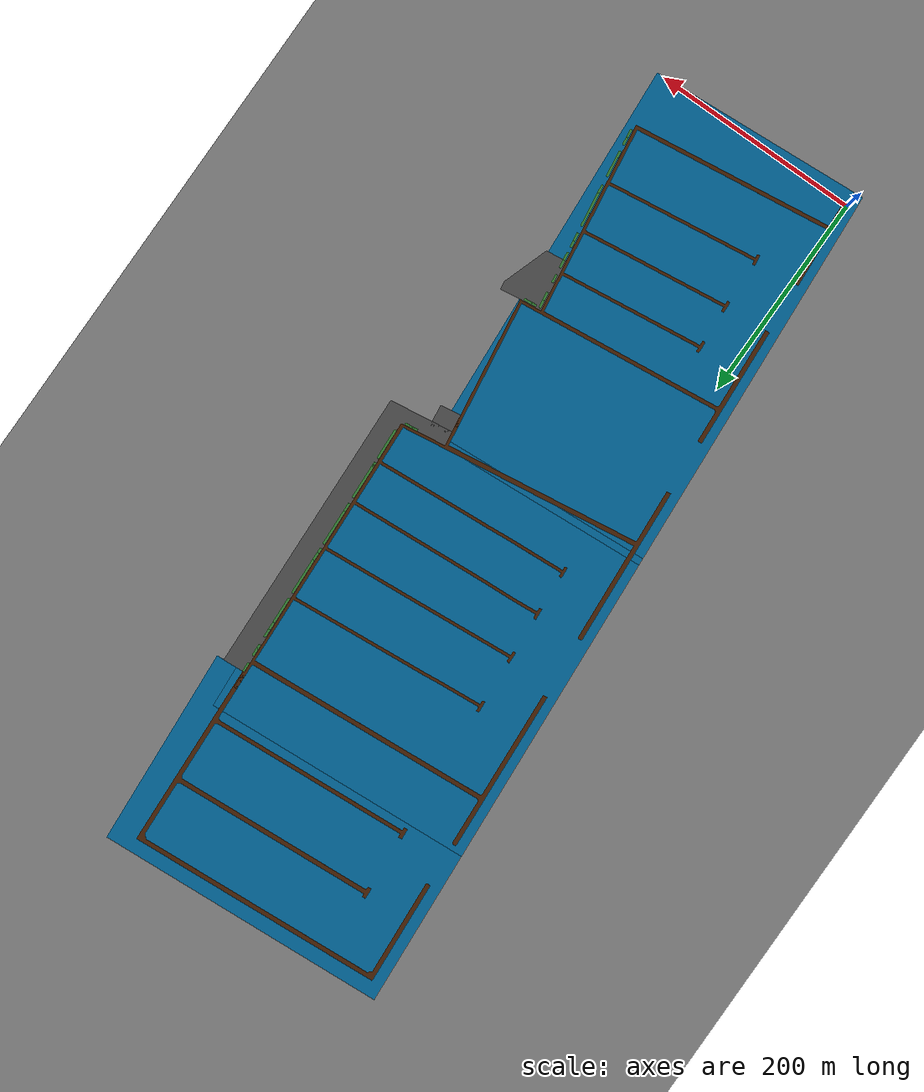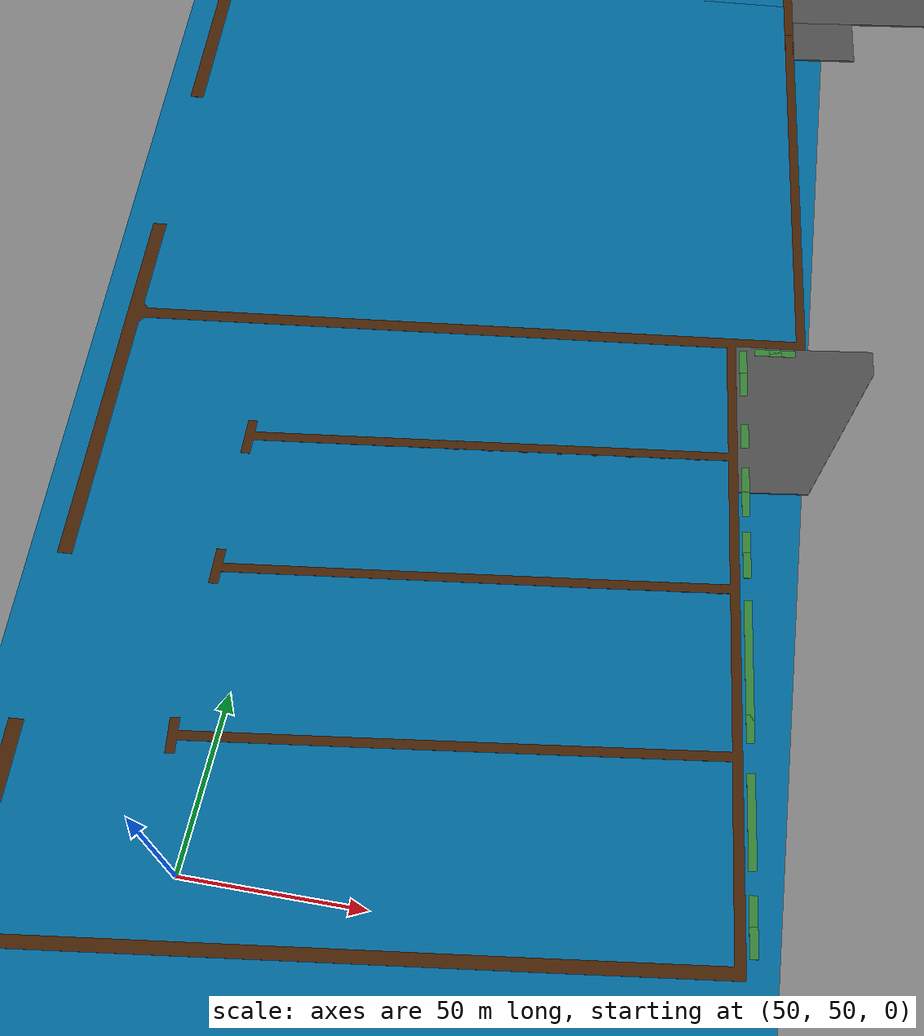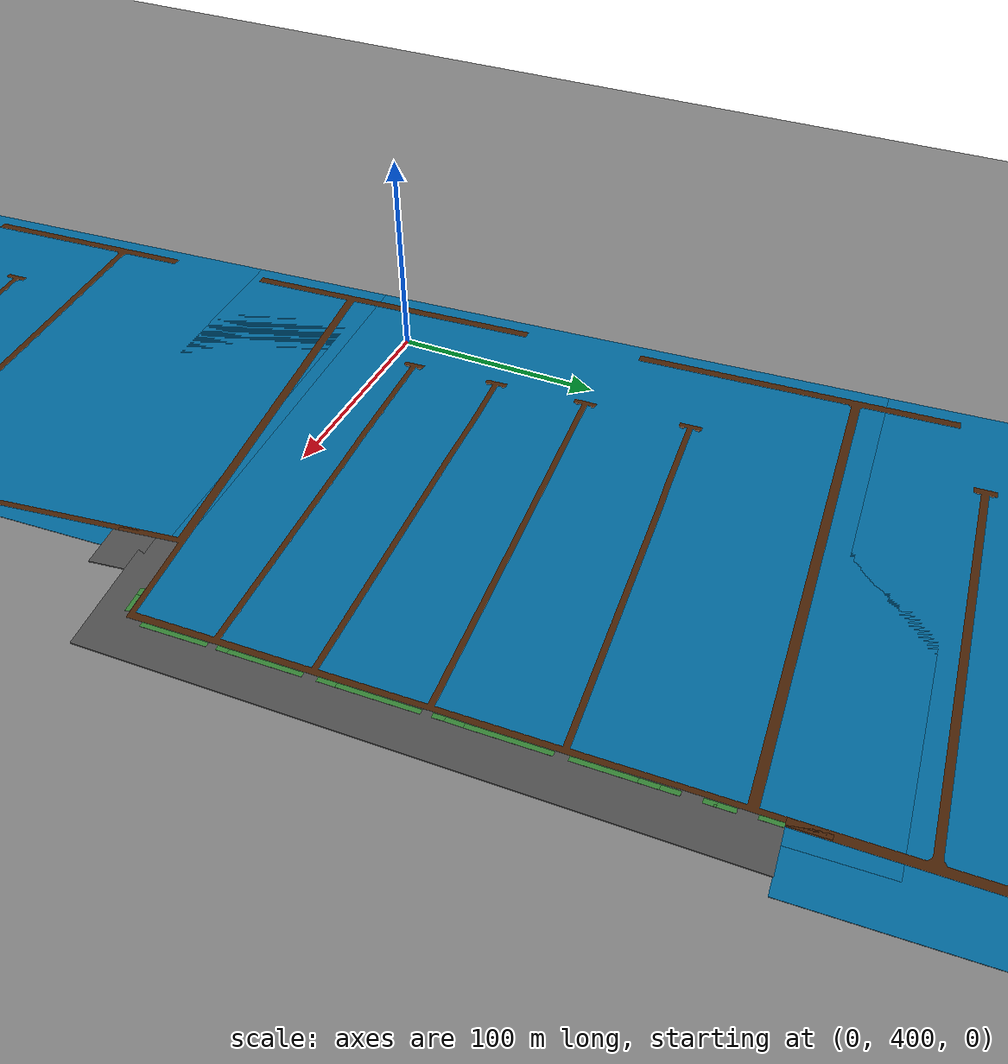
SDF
<sdf version='1.10'>
  <world name='marina_harmonic'>
    <plugin name='gz::sim::systems::Physics' filename='gz-sim-physics-system'/>
    <plugin name='gz::sim::systems::UserCommands' filename='gz-sim-user-commands-system'/>
    <plugin name='gz::sim::systems::SceneBroadcaster' filename='gz-sim-scene-broadcaster-system'/>
    <plugin filename="gz-sim-imu-system" name="gz::sim::systems::Imu"> </plugin>
    <plugin filename="gz-sim-navsat-system" name="gz::sim::systems::NavSat"> </plugin>
    <plugin filename="gz-sim-sensors-system" name="gz::sim::systems::Sensors">
      <render_engine>ogre2</render_engine>
    </plugin>
    <plugin name='gz::sim::systems::Contact' filename='gz-sim-contact-system'/>
    <physics name='1ms' type='ignored'>
      <max_step_size>0.001</max_step_size>
      <real_time_factor>1</real_time_factor>
      <real_time_update_rate>1000</real_time_update_rate>
    </physics>
    <gravity>0 0 -9.8000000000000007</gravity>
    <magnetic_field>5.5644999999999998e-06 2.2875799999999999e-05 -4.2388400000000002e-05</magnetic_field>
    <atmosphere type='adiabatic'/>
    <scene>
      <ambient>0.400000006 0.400000006 0.400000006 1</ambient>
      <background>0.699999988 0.699999988 0.699999988 1</background>
      <shadows>true</shadows>
    </scene>
    <model name='ground_plane'>
      <static>true</static>
      <link name='link'>
        <collision name='collision'>
          <geometry>
            <plane>
              <normal>0 0 1</normal>
              <size>100 100</size>
            </plane>
          </geometry>
          <surface>
            <friction>
              <ode/>
            </friction>
            <bounce/>
            <contact/>
          </surface>
        </collision>
        <visual name='visual'>
          <geometry>
            <plane>
              <normal>0 0 1</normal>
              <size>100 100</size>
            </plane>
          </geometry>
          <material>
            <ambient>0.5 0.5 0.5 1</ambient>
            <diffuse>0.5 0.5 0.5 1</diffuse>
            <specular>0.5 0.5 0.5 1</specular>
          </material>
        </visual>
        <pose>0 0 0 0 0 0</pose>
        <inertial>
          <pose>0 0 0 0 0 0</pose>
          <mass>1</mass>
          <inertia>
            <ixx>1</ixx>
            <ixy>0</ixy>
            <ixz>0</ixz>
            <iyy>1</iyy>
            <iyz>0</iyz>
            <izz>1</izz>
          </inertia>
        </inertial>
        <enable_wind>false</enable_wind>
      </link>
      <pose>0 0 0 0 0 0</pose>
      <self_collide>false</self_collide>
    </model>
    <include>
      <uri>file:///home/albert/marinero_ws/src/marinero_simulations/models/world_zona_A_environment</uri>
      <name>world_zona_A_environment</name>
      <pose>96.709999999999994 55.0214 0 0 0 0.068000000000000005</pose>
    </include>
    <include>
      <uri>file:///home/albert/marinero_ws/src/marinero_simulations/models/world_zona_B_environment</uri>
      <name>world_zona_B_environment</name>
      <pose>96.631799999999998 54.757800000000003 0 0 0 0.067599999999999993</pose>
    </include>
    <include>
      <uri>file:///home/albert/marinero_ws/src/marinero_simulations/models/world_zona_C_environment</uri>
      <name>world_zona_C_environment</name>
      <pose>97.163650000000004 54.757399999999997 0 0 0 0.068500000000000005</pose>
    </include>
    <light name='sun' type='directional'>
      <pose>0 0 10 0 0 0</pose>
      <cast_shadows>true</cast_shadows>
      <intensity>1</intensity>
      <direction>-0.5 0.10000000000000001 -0.90000000000000002</direction>
      <diffuse>0.800000012 0.800000012 0.800000012 1</diffuse>
      <specular>0.200000003 0.200000003 0.200000003 1</specular>
      <attenuation>
        <range>1000</range>
        <linear>0.01</linear>
        <constant>0.90000000000000002</constant>
        <quadratic>0.001</quadratic>
      </attenuation>
      <spot>
        <inner_angle>0</inner_angle>
        <outer_angle>0</outer_angle>
        <falloff>0</falloff>
      </spot>
    </light>
    <light name='directionallight' type='directional'>
      <pose>77.237907936943543 680.84047568765823 2 0 0 0</pose>
      <cast_shadows>true</cast_shadows>
      <intensity>1</intensity>
      <direction>0 0 -1</direction>
      <diffuse>0.800000012 0.800000012 0.800000012 1</diffuse>
      <specular>0.200000003 0.200000003 0.200000003 1</specular>
      <attenuation>
        <range>1000</range>
        <linear>0.01</linear>
        <constant>0.90000000000000002</constant>
        <quadratic>0.001</quadratic>
      </attenuation>
      <spot>
        <inner_angle>0</inner_angle>
        <outer_angle>0</outer_angle>
        <falloff>0</falloff>
      </spot>
    </light>
  </world>
</sdf>

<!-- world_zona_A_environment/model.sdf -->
<sdf version='1.7'>
  <model name="world_zona_A_environment">
    <static>true</static>
    <pose>0 0 0 0 0 0</pose>

    <include>
      <uri>/marinero_simulations/models/Marina_Zona_A</uri>
      <pose>-100.225000 -48.323200 0.08 0 0 0</pose>
    </include>

    <include>
      <uri>/marinero_simulations/models/sea_plane_A</uri>
      <pose>-1.12 126.455 0 0 0 0</pose>
    </include>

    <include>
      <uri>/marinero_simulations/models/asphalt_plane</uri>
      <name>asphalt_plane_0</name>
      <pose>105.656586 22.996641 0.0 0 0 -1.498</pose>
    </include>

    <include>
      <uri>/marinero_simulations/models/asphalt_plane</uri>
      <name>asphalt_plane_1</name>
      <pose>100.593285 92.427048 0.0 0 0 -1.498</pose>
    </include>

    <include>
      <uri>/marinero_simulations/models/asphalt_plane_angle_section</uri>
      <pose>96.411346 149.332382 0.0 0 0 0</pose>
    </include>

    <include>
      <uri>/marinero_simulations/models/asphalt_plane</uri>
      <name>asphalt_plane_2</name>
      <pose>113.067787 209.915146 0.0 0 0 -1.500000</pose>
    </include>

    <include>
      <uri>/marinero_simulations/models/asphalt_plane</uri>
      <name>asphalt_plane_3</name>
      <pose>108.119179 279.695282 0 0 0 -1.500000</pose>
    </include>

    <include>
      <uri>/marinero_simulations/models/grass_plane_SM</uri>
      <name>grass_0</name>
      <pose>99.5246 -3.165798 0 0 0 0.0925</pose>
    </include>

    <include>
      <uri>/marinero_simulations/models/grass_plane_SM</uri>
      <name>grass_1</name>
      <pose>98.95 4.711878 0 0 0 0.0925</pose>
    </include>

    <include>
      <uri>/marinero_simulations/models/grass_plane_M</uri>
      <name>grass_2</name>
      <pose>97.35 27.6528 0 0 0 0.0925</pose>
    </include>

    <include>
      <uri>/marinero_simulations/models/grass_plane_SM</uri>
      <name>grass_3</name>
      <pose>95.6044 52.7577 0 0 0 0.0925</pose>
    </include>

    <include>
      <uri>/marinero_simulations/models/grass_plane</uri>
      <name>grass_4</name>
      <pose>94.16 72.5637 0 0 0 0.0925</pose>
    </include>

    <include>
      <uri>/marinero_simulations/models/grass_plane_SM</uri>
      <name>grass_5</name>
      <pose>92.0607 100.811 0 0 0 0.0925</pose>
    </include>

    <include>
      <uri>/marinero_simulations/models/grass_plane_SM</uri>
      <name>grass_6</name>
      <pose>91.6 107.127 0 0 0 0.0925</pose>
    </include>

    <include>
      <uri>/marinero_simulations/models/grass_plane_SM</uri>
      <name>grass_7</name>
      <pose>90.676 120.106 0 0 0 0.0925</pose>
    </include>

    <include>
      <uri>/marinero_simulations/models/grass_plane_SM</uri>
      <name>grass_8</name>
      <pose>90.1 128.004425 0 0 0 0.0925</pose>
    </include>

    <include>
      <uri>/marinero_simulations/models/grass_plane_SM</uri>
      <name>grass_9</name>
      <pose>89.10 142.509000 0 0 0 0.0925</pose>
    </include>

    <include>
      <uri>/marinero_simulations/models/grass_plane_SM</uri>
      <name>grass_10</name>
      <pose>87.75 160.180000 0 0 0 0.0925</pose>
    </include>

    <include>
      <uri>/marinero_simulations/models/grass_plane_SM</uri>
      <name>grass_11</name>
      <pose>87.17 168.135000 0 0 0 0.0925</pose>
    </include>

    <include>
      <uri>/marinero_simulations/models/grass_plane_SM</uri>
      <name>grass_12</name>
      <pose>98.691666 172.331558 0 0 0 -1.510000</pose>
    </include>

    <include>
      <uri>/marinero_simulations/models/grass_plane_SM</uri>
      <name>grass_13</name>
      <pose>94.449425 172.158798 0 0 0 -1.510000</pose>
    </include>

  </model>
</sdf>

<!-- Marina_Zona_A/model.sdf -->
<sdf version='1.7'>
  <model name='Marina_Zona_A'>
    <link name='link'>
      <self_collide>0</self_collide>
      <gravity>1</gravity>
      <inertial>
        <mass>100000</mass>
        <pose>0 0 0 0 0 0</pose>
        <inertia>
          <ixx>1</ixx>
          <ixy>0</ixy>
          <ixz>0</ixz>
          <iyy>1</iyy>
          <iyz>0</iyz>
          <izz>1</izz>
        </inertia>
      </inertial>
      <enable_wind>0</enable_wind>
      <kinematic>0</kinematic>
      <pose>0 0 0 0 0 0</pose>
      <visual name='visual'>
        <pose>0 0 0 0 0 0</pose>
        <geometry>
          <mesh>
            <uri>model://Marina_Zona_A/meshes/Marina_Zona_A.stl</uri>
            <scale>1 1 1</scale>
          </mesh>
        </geometry>
        <material>
          <ambient>0.278 0.129 0.02 1</ambient>
          <diffuse>0.278 0.129 0.02 1</diffuse>
          <specular>0.278 0.129 0.02 1</specular>
          <emissive>0 0 0 1</emissive>
          <shader type='pixel'>
            <normal_map>__default__</normal_map>
          </shader>
        </material>
        <transparency>0</transparency>
        <cast_shadows>1</cast_shadows>
      </visual>
      <collision name='collision'>
        <laser_retro>0</laser_retro>
        <max_contacts>10</max_contacts>
        <pose>0 0 0 0 0 0</pose>
        <geometry>
          <mesh>
            <uri>model://Marina_Zona_A/meshes/Marina_Zona_A.stl</uri>
            <scale>1 1 1</scale>
          </mesh>
        </geometry>
        <surface>
          <friction>
            <ode>
              <mu>1.0</mu>
              <mu2>1.0</mu2>
              <fdir1>0 0 0</fdir1>
              <slip1>0.001</slip1>
              <slip2>1e-05</slip2>
            </ode>
            <torsional>
              <coefficient>1</coefficient>
              <patch_radius>0</patch_radius>
              <surface_radius>0</surface_radius>
              <use_patch_radius>1</use_patch_radius>
              <ode>
                <slip>0</slip>
              </ode>
            </torsional>
          </friction>
          <bounce>
            <restitution_coefficient>0</restitution_coefficient>
            <threshold>1000</threshold>
          </bounce>
          <contact>
            <collide_without_contact>0</collide_without_contact>
            <collide_without_contact_bitmask>0</collide_without_contact_bitmask>
            <collide_bitmask>1</collide_bitmask>
            <ode>
              <soft_cfm>0</soft_cfm>
              <soft_erp>0.2</soft_erp>
              <kp>1e+13</kp>
              <kd>10</kd>
              <max_vel>0.01</max_vel>
              <min_depth>0.001</min_depth>
            </ode>
            <bullet>
              <split_impulse>1</split_impulse>
              <split_impulse_penetration_threshold>-0.01</split_impulse_penetration_threshold>
              <soft_cfm>0</soft_cfm>
              <soft_erp>0.2</soft_erp>
              <kp>1e+11</kp>
              <kd>100</kd>
            </bullet>
          </contact>
        </surface>
      </collision>
    </link>
    <static>1</static>
    <allow_auto_disable>1</allow_auto_disable>
  </model>
</sdf>

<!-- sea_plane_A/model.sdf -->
<sdf version='1.7'>
  <model name='sea_plane_A'>
    <link name='link'>
      <self_collide>0</self_collide>
      <enable_wind>0</enable_wind>
      <kinematic>0</kinematic>
      <pose>0 0 0 0 0 0</pose>
      <gravity>1</gravity>
      <inertial>
        <mass>5.27875e+06</mass>
        <pose>0 0 0 0 0 0</pose>
      </inertial>
      <visual name='visual'>
        <cast_shadows>0</cast_shadows>
        <geometry>
          <box>
            <size>215 378 0.25</size>
          </box>
        </geometry>
        <material>
          <ambient>0.0 0.4 0.6 1.0</ambient>
          <diffuse>0.0 0.4 0.6 1.0</diffuse>
          <specular>0.2 0.2 0.2 1.0</specular>
          <pbr>
            <metal>
              <albedo_map>model://sea_plane/materials/textures/sea_plane.jpg</albedo_map>
            </metal>
          </pbr>
        </material>
        <pose>0 0 0 0 -0 0</pose>
        <transparency>0</transparency>
      </visual>
      <collision name='collision'>
        <laser_retro>0</laser_retro>
        <max_contacts>10</max_contacts>
        <pose>0 0 0 0 -0 0</pose>
        <geometry>
          <box>
            <size>215 378 0.25</size>
          </box>
        </geometry>
        <surface>
          <friction>
            <ode>
              <mu>1</mu>
              <mu2>1</mu2>
              <fdir1>0 0 0</fdir1>
              <slip1>0</slip1>
              <slip2>0</slip2>
            </ode>
            <torsional>
              <coefficient>1</coefficient>
              <patch_radius>0</patch_radius>
              <surface_radius>0</surface_radius>
              <use_patch_radius>1</use_patch_radius>
              <ode>
                <slip>0</slip>
              </ode>
            </torsional>
          </friction>
          <bounce>
            <restitution_coefficient>0</restitution_coefficient>
            <threshold>1e+06</threshold>
          </bounce>
          <contact>
            <collide_without_contact>0</collide_without_contact>
            <collide_without_contact_bitmask>1</collide_without_contact_bitmask>
            <collide_bitmask>1</collide_bitmask>
            <ode>
              <soft_cfm>0</soft_cfm>
              <soft_erp>0.2</soft_erp>
              <kp>1e+13</kp>
              <kd>1</kd>
              <max_vel>0.01</max_vel>
              <min_depth>0</min_depth>
            </ode>
            <bullet>
              <split_impulse>1</split_impulse>
              <split_impulse_penetration_threshold>-0.01</split_impulse_penetration_threshold>
              <soft_cfm>0</soft_cfm>
              <soft_erp>0.2</soft_erp>
              <kp>1e+13</kp>
              <kd>1</kd>
            </bullet>
          </contact>
        </surface>
      </collision>
    </link>
    <static>1</static>
    <allow_auto_disable>1</allow_auto_disable>
  </model>
</sdf>

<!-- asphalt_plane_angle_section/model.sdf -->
<sdf version='1.7'>
  <model name='asphalt_plane_angle_section'>
    <link name='link'>
      <self_collide>0</self_collide>
      <gravity>1</gravity>
      <inertial>
        <mass>1</mass>
        <pose>0 0 0 0 0 0</pose>
        <inertia>
          <ixx>1</ixx>
          <ixy>0</ixy>
          <ixz>0</ixz>
          <iyy>1</iyy>
          <iyz>0</iyz>
          <izz>1</izz>
        </inertia>
      </inertial>
      <enable_wind>0</enable_wind>
      <kinematic>0</kinematic>
      <pose>0 0 1.015 0 0 -1.4967</pose>
      <visual name='visual'>
        <pose>0 0 0 0 0 0</pose>
        <geometry>
          <mesh>
            <uri>model://asphalt_plane_angle_section/meshes/asphalt_plane_angle_section.dae</uri>
            <scale>1 1 5</scale>
          </mesh>
        </geometry>
        <material>
          <ambient>0.3 0.3 0.3 1.0</ambient>
          <diffuse>0.3 0.3 0.3 1.0</diffuse>
          <specular>0.1 0.1 0.1 1.0</specular>
        </material>
        <transparency>0</transparency>
        <cast_shadows>1</cast_shadows>
      </visual>
      <collision name='collision'>
        <laser_retro>0</laser_retro>
        <max_contacts>10</max_contacts>
        <pose>0 0 0 0 0 0</pose>
        <geometry>
          <mesh>
            <uri>model://asphalt_plane_angle_section/meshes/asphalt_plane_angle_section.dae</uri>
            <scale>1 1 5</scale>
          </mesh>
        </geometry>
        <surface>
          <friction>
            <ode>
              <mu>1</mu>
              <mu2>1</mu2>
              <fdir1>0 0 0</fdir1>
              <slip1>0.001</slip1>
              <slip2>1e-05</slip2>
            </ode>
            <torsional>
              <coefficient>1</coefficient>
              <patch_radius>0</patch_radius>
              <surface_radius>0</surface_radius>
              <use_patch_radius>1</use_patch_radius>
              <ode>
                <slip>0</slip>
              </ode>
            </torsional>
          </friction>
          <bounce>
            <restitution_coefficient>0</restitution_coefficient>
            <threshold>1e+06</threshold>
          </bounce>
          <contact>
            <collide_without_contact>0</collide_without_contact>
            <collide_without_contact_bitmask>1</collide_without_contact_bitmask>
            <collide_bitmask>1</collide_bitmask>
            <ode>
              <soft_cfm>0</soft_cfm>
              <soft_erp>0.2</soft_erp>
              <kp>1e+13</kp>
              <kd>1</kd>
              <max_vel>0.01</max_vel>
              <min_depth>0</min_depth>
            </ode>
            <bullet>
              <split_impulse>1</split_impulse>
              <split_impulse_penetration_threshold>-0.01</split_impulse_penetration_threshold>
              <soft_cfm>0</soft_cfm>
              <soft_erp>0.2</soft_erp>
              <kp>1e+13</kp>
              <kd>1</kd>
            </bullet>
          </contact>
        </surface>
      </collision>
    </link>
    <static>1</static>
    <allow_auto_disable>1</allow_auto_disable>
  </model>
</sdf>

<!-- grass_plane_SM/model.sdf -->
<sdf version='1.7'>
  <model name='grass_plane_SM'>
    <link name='link'>
      <self_collide>0</self_collide>
      <enable_wind>0</enable_wind>
      <kinematic>0</kinematic>
      <pose>0 0 1.255 0 0 -1.5905</pose>
      <gravity>1</gravity>
      <inertial>
        <mass>1</mass>
        <pose>0 0 0 0 0 0</pose>
        <inertia>
          <ixx>1</ixx>
          <ixy>0</ixy>
          <ixz>0</ixz>
          <iyy>1</iyy>
          <iyz>0</iyz>
          <izz>1</izz>
        </inertia>
      </inertial>
      <visual name='visual'>
        <cast_shadows>0</cast_shadows>
        <geometry>
          <box>
            <size>8 2.25 0.1</size>
          </box>
        </geometry>
        <material>
          <ambient>0.2 0.5 0.2 1</ambient>
          <diffuse>0.2 0.5 0.2 1</diffuse>
          <specular>0.2 0.2 0.2 1</specular>
          <pbr>
            <metal>
              <albedo_map>model://grass_plane/materials/textures/grass.jpg</albedo_map>
            </metal>
          </pbr>
        </material>
        <pose>0 0 0 0 0 0</pose>
        <transparency>0</transparency>
      </visual>
      <collision name='collision'>
        <laser_retro>0</laser_retro>
        <max_contacts>10</max_contacts>
        <pose>0 0 0 0 0 0</pose>
        <geometry>
          <box>
            <size>8 2.25 0.1</size>
          </box>
        </geometry>
        <surface>
          <friction>
            <ode>
              <mu>1</mu>
              <mu2>1</mu2>
              <fdir1>0 0 0</fdir1>
              <slip1>0.001</slip1>
              <slip2>1e-05</slip2>
            </ode>
            <torsional>
              <coefficient>1</coefficient>
              <patch_radius>0</patch_radius>
              <surface_radius>0</surface_radius>
              <use_patch_radius>1</use_patch_radius>
              <ode>
                <slip>0</slip>
              </ode>
            </torsional>
          </friction>
          <bounce>
            <restitution_coefficient>0</restitution_coefficient>
            <threshold>1e+06</threshold>
          </bounce>
          <contact>
            <collide_without_contact>0</collide_without_contact>
            <collide_without_contact_bitmask>1</collide_without_contact_bitmask>
            <collide_bitmask>1</collide_bitmask>
            <ode>
              <soft_cfm>0</soft_cfm>
              <soft_erp>0.2</soft_erp>
              <kp>1e+13</kp>
              <kd>1</kd>
              <max_vel>0.01</max_vel>
              <min_depth>0</min_depth>
            </ode>
            <bullet>
              <split_impulse>1</split_impulse>
              <split_impulse_penetration_threshold>-0.01</split_impulse_penetration_threshold>
              <soft_cfm>0</soft_cfm>
              <soft_erp>0.2</soft_erp>
              <kp>1e+13</kp>
              <kd>1</kd>
            </bullet>
          </contact>
        </surface>
      </collision>
    </link>
    <static>1</static>
    <allow_auto_disable>1</allow_auto_disable>
  </model>
</sdf>

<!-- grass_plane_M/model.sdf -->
<sdf version='1.7'>
  <model name='grass_plane_M'>
    <link name='link'>
      <self_collide>0</self_collide>
      <enable_wind>0</enable_wind>
      <kinematic>0</kinematic>
      <pose>0 0 1.255 0 0 -1.5905</pose>
      <gravity>1</gravity>
      <inertial>
        <mass>1</mass>
        <pose>0 0 0 0 0 0</pose>
        <inertia>
          <ixx>1</ixx>
          <ixy>0</ixy>
          <ixz>0</ixz>
          <iyy>1</iyy>
          <iyz>0</iyz>
          <izz>1</izz>
        </inertia>
      </inertial>
      <visual name='visual'>
        <cast_shadows>0</cast_shadows>
        <geometry>
          <box>
            <size>25.75 2.25 0.1</size>
          </box>
        </geometry>
        <material>
          <ambient>0.2 0.5 0.2 1</ambient>
          <diffuse>0.2 0.5 0.2 1</diffuse>
          <specular>0.2 0.2 0.2 1</specular>
          <pbr>
            <metal>
              <albedo_map>model://grass_plane/materials/textures/grass.jpg</albedo_map>
            </metal>
          </pbr>
        </material>
        <pose>0 0 0 0 0 0</pose>
        <transparency>0</transparency>
      </visual>
      <collision name='collision'>
        <laser_retro>0</laser_retro>
        <max_contacts>10</max_contacts>
        <pose>0 0 0 0 0 0</pose>
        <geometry>
          <box>
            <size>25.75 2.25 0.1</size>
          </box>
        </geometry>
        <surface>
          <friction>
            <ode>
              <mu>1</mu>
              <mu2>1</mu2>
              <fdir1>0 0 0</fdir1>
              <slip1>0.001</slip1>
              <slip2>1e-05</slip2>
            </ode>
            <torsional>
              <coefficient>1</coefficient>
              <patch_radius>0</patch_radius>
              <surface_radius>0</surface_radius>
              <use_patch_radius>1</use_patch_radius>
              <ode>
                <slip>0</slip>
              </ode>
            </torsional>
          </friction>
          <bounce>
            <restitution_coefficient>0</restitution_coefficient>
            <threshold>1e+06</threshold>
          </bounce>
          <contact>
            <collide_without_contact>0</collide_without_contact>
            <collide_without_contact_bitmask>1</collide_without_contact_bitmask>
            <collide_bitmask>1</collide_bitmask>
            <ode>
              <soft_cfm>0</soft_cfm>
              <soft_erp>0.2</soft_erp>
              <kp>1e+13</kp>
              <kd>1</kd>
              <max_vel>0.01</max_vel>
              <min_depth>0</min_depth>
            </ode>
            <bullet>
              <split_impulse>1</split_impulse>
              <split_impulse_penetration_threshold>-0.01</split_impulse_penetration_threshold>
              <soft_cfm>0</soft_cfm>
              <soft_erp>0.2</soft_erp>
              <kp>1e+13</kp>
              <kd>1</kd>
            </bullet>
          </contact>
        </surface>
      </collision>
    </link>
    <static>1</static>
    <allow_auto_disable>1</allow_auto_disable>
  </model>
</sdf>

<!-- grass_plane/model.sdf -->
<sdf version='1.7'>
  <model name='grass_plane'>
    <link name='link'>
      <self_collide>0</self_collide>
      <enable_wind>0</enable_wind>
      <kinematic>0</kinematic>
      <pose>0 0 1.255 0 0 -1.5905</pose>
      <gravity>1</gravity>
      <inertial>
        <mass>1</mass>
        <pose>0 0 0 0 0 0</pose>
        <inertia>
          <ixx>1</ixx>
          <ixy>0</ixy>
          <ixz>0</ixz>
          <iyy>1</iyy>
          <iyz>0</iyz>
          <izz>1</izz>
        </inertia>
      </inertial>
      <visual name='visual'>
        <cast_shadows>0</cast_shadows>
        <geometry>
          <box>
            <size>35 2.25 0.1</size>
          </box>
        </geometry>
        <material>
          <ambient>0.2 0.5 0.2 1</ambient>
          <diffuse>0.2 0.5 0.2 1</diffuse>
          <specular>0.2 0.2 0.2 1</specular>
          <pbr>
            <metal>
              <albedo_map>model://grass_plane/materials/textures/grass.jpg</albedo_map>
            </metal>
          </pbr>
        </material>
        <pose>0 0 0 0 0 0</pose>
        <transparency>0</transparency>
      </visual>
      <collision name='collision'>
        <laser_retro>0</laser_retro>
        <max_contacts>10</max_contacts>
        <pose>0 0 0 0 0 0</pose>
        <geometry>
          <box>
            <size>35 2.25 0.1</size>
          </box>
        </geometry>
        <surface>
          <friction>
            <ode>
              <mu>1</mu>
              <mu2>1</mu2>
              <fdir1>0 0 0</fdir1>
              <slip1>0.001</slip1>
              <slip2>1e-05</slip2>
            </ode>
            <torsional>
              <coefficient>1</coefficient>
              <patch_radius>0</patch_radius>
              <surface_radius>0</surface_radius>
              <use_patch_radius>1</use_patch_radius>
              <ode>
                <slip>0</slip>
              </ode>
            </torsional>
          </friction>
          <bounce>
            <restitution_coefficient>0</restitution_coefficient>
            <threshold>1e+06</threshold>
          </bounce>
          <contact>
            <collide_without_contact>0</collide_without_contact>
            <collide_without_contact_bitmask>1</collide_without_contact_bitmask>
            <collide_bitmask>1</collide_bitmask>
            <ode>
              <soft_cfm>0</soft_cfm>
              <soft_erp>0.2</soft_erp>
              <kp>1e+13</kp>
              <kd>1</kd>
              <max_vel>0.01</max_vel>
              <min_depth>0</min_depth>
            </ode>
            <bullet>
              <split_impulse>1</split_impulse>
              <split_impulse_penetration_threshold>-0.01</split_impulse_penetration_threshold>
              <soft_cfm>0</soft_cfm>
              <soft_erp>0.2</soft_erp>
              <kp>1e+13</kp>
              <kd>1</kd>
            </bullet>
          </contact>
        </surface>
      </collision>
    </link>
    <static>1</static>
    <allow_auto_disable>1</allow_auto_disable>
  </model>
</sdf>

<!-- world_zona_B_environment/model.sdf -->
<sdf version='1.7'>
  <model name='world_zona_B_environment'>
    <static>true</static>
    <pose>0 0 0 0 0 0</pose>

    <include>
      <uri>/marinero_simulations/models/Marina_Zona_B</uri>
      <pose>94.318800 292.840000 0.08 0 0 0</pose>
    </include>

    <include>
      <uri>/marinero_simulations/models/sea_plane_B1</uri>
      <pose>21.285 475.0 0 0 0 0.0004</pose>
    </include>

    <include>
      <uri>/marinero_simulations/models/sea_plane_B2</uri>
      <pose>-6.139 285.0 0 0 0 0.0004</pose>
    </include>

    <include>
      <uri>/marinero_simulations/models/asphalt_plane_zone_B</uri>
      <pose>96.130478 307.399536 0 0 0 0</pose>
    </include>

    <include>
      <uri>/marinero_simulations/models/asphalt_plane_XS</uri>
      <pose>106.578583 301.612610 0 0 0 0</pose>
    </include>

    <include>
      <uri>/marinero_simulations/models/grass_plane_XS</uri>
      <name>grass_0</name>
      <pose>143.796000 583.12000 0 0 0 0</pose>
    </include>

    <include>
      <uri>/marinero_simulations/models/grass_plane_SM</uri>
      <name>grass_1</name>
      <pose>143.811325 567.149231 0 0 0 0</pose>
    </include>

    <include>
      <uri>/marinero_simulations/models/grass_plane_S</uri>
      <name>grass_2</name>
      <pose>143.703766 561.695679 0 0 0 0</pose>
    </include>

    <include>
      <uri>/marinero_simulations/models/grass_plane_SM</uri>
      <name>grass_3</name>
      <pose>143.624954 547.390930 0 0 0 0</pose>
    </include>

    <include>
      <uri>/marinero_simulations/models/grass_plane_SM</uri>
      <name>grass_4</name>
      <pose>143.477814 539.911926 0 0 0 0</pose>
    </include>

    <include>
      <uri>/marinero_simulations/models/grass_plane_M</uri>
      <name>grass_5</name>
      <pose>143.148788 523.226013 0 0 0 0</pose>
    </include>

    <include>
      <uri>/marinero_simulations/models/grass_plane</uri>
      <name>grass_6</name>
      <pose>142.555176 487.275604 0 0 0 0</pose>
    </include>

    <include>
      <uri>/marinero_simulations/models/grass_plane_SM</uri>
      <name>grass_7</name>
      <pose>142.064011 466.055359 0 0 0 -0.018462</pose>
    </include>

    <include>
      <uri>/marinero_simulations/models/grass_plane_S</uri>
      <name>grass_8</name>
      <pose>141.874283 459.836212 0 0 0 0</pose>
    </include>

    <include>
      <uri>/marinero_simulations/models/grass_plane</uri>
      <name>grass_9</name>
      <pose>141.559189 435.483673 0 0 0 0</pose>
    </include>

    <include>
      <uri>/marinero_simulations/models/grass_plane_SM</uri>
      <name>grass_10</name>
      <pose>141.136093 414.013672 0 0 0 0</pose>
    </include>

    <include>
      <uri>/marinero_simulations/models/grass_plane</uri>
      <name>grass_11</name>
      <pose>140.760880 386.513733 0 0 0 0</pose>
    </include>

    <include>
      <uri>/marinero_simulations/models/grass_plane_S</uri>
      <name>grass_12</name>
      <pose>140.415421 369.034607 0 0 0 0</pose>
    </include>

    <include>
      <uri>/marinero_simulations/models/grass_plane_L</uri>
      <name>grass_13</name>
      <pose>140.158173 347.402802 0 0 0 -0.008000</pose>
    </include>

    <include>
      <uri>/marinero_simulations/models/grass_plane_XS</uri>
      <name>grass_14</name>
      <pose>131.264 322.973 0 0 0 -1.478720</pose>
    </include>

    <include>
      <uri>/marinero_simulations/models/grass_plane_XS</uri>
      <name>grass_15</name>
      <pose>127.521 322.702 0 0 0 -1.478720</pose>
    </include>

  </model>
</sdf>

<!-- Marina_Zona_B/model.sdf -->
<sdf version='1.7'>
  <model name='Marina_Zona_B'>
    <link name='link'>
      <self_collide>0</self_collide>
      <gravity>1</gravity>
      <inertial>
        <mass>100000</mass>
        <pose>0 0 0 0 -0 0</pose>
        <inertia>
          <ixx>1</ixx>
          <ixy>0</ixy>
          <ixz>0</ixz>
          <iyy>1</iyy>
          <iyz>0</iyz>
          <izz>1</izz>
        </inertia>
      </inertial>
      <enable_wind>0</enable_wind>
      <kinematic>0</kinematic>
      <pose>0 0 0 0 0 0</pose>
      <visual name='visual'>
        <pose>0 0 0 0 0 0</pose>
        <geometry>
          <mesh>
            <uri>model://Marina_Zona_B/meshes/Marina_Zona_B.stl</uri>
            <scale>1 1 1</scale>
          </mesh>
        </geometry>
        <material>
          <ambient>0.278 0.129 0.02 1</ambient>
          <diffuse>0.278 0.129 0.02 1</diffuse>
          <specular>0.278 0.129 0.02 1</specular>
          <emissive>0 0 0 1</emissive>
          <shader type='pixel'>
            <normal_map>__default__</normal_map>
          </shader>
        </material>
        <transparency>0</transparency>
        <cast_shadows>1</cast_shadows>
      </visual>
      <collision name='collision'>
        <laser_retro>0</laser_retro>
        <max_contacts>10</max_contacts>
        <pose>0 0 0 0 0 0</pose>
        <geometry>
          <mesh>
            <uri>model://Marina_Zona_B/meshes/Marina_Zona_B.stl</uri>
            <scale>1 1 1</scale>
          </mesh>
        </geometry>
        <surface>
          <friction>
            <ode>
              <mu>1.0</mu>
              <mu2>1.0</mu2>
              <fdir1>0 0 0</fdir1>
              <slip1>0.001</slip1>
              <slip2>1e-05</slip2>
            </ode>
            <torsional>
              <coefficient>1</coefficient>
              <patch_radius>0</patch_radius>
              <surface_radius>0</surface_radius>
              <use_patch_radius>1</use_patch_radius>
              <ode>
                <slip>0</slip>
              </ode>
            </torsional>
          </friction>
          <bounce>
            <restitution_coefficient>0</restitution_coefficient>
            <threshold>1000</threshold>
          </bounce>
          <contact>
            <collide_without_contact>0</collide_without_contact>
            <collide_without_contact_bitmask>0</collide_without_contact_bitmask>
            <collide_bitmask>1</collide_bitmask>
            <ode>
              <soft_cfm>0</soft_cfm>
              <soft_erp>0.2</soft_erp>
              <kp>1e+13</kp>
              <kd>10</kd>
              <max_vel>0.01</max_vel>
              <min_depth>0.001</min_depth>
            </ode>
            <bullet>
              <split_impulse>1</split_impulse>
              <split_impulse_penetration_threshold>-0.01</split_impulse_penetration_threshold>
              <soft_cfm>0</soft_cfm>
              <soft_erp>0.2</soft_erp>
              <kp>1e+11</kp>
              <kd>100</kd>
            </bullet>
          </contact>
        </surface>
      </collision>
    </link>
    <static>1</static>
    <allow_auto_disable>1</allow_auto_disable>
  </model>
</sdf>

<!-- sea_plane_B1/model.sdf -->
<sdf version='1.7'>
  <model name='sea_plane_B1'>
    <link name='link'>
      <self_collide>0</self_collide>
      <enable_wind>0</enable_wind>
      <kinematic>0</kinematic>
      <pose>0 0 0 0 -0 0</pose>
      <gravity>1</gravity>
      <inertial>
        <mass>5.27875e+06</mass>
        <pose>0 0 0 0 -0 0</pose>
      </inertial>
      <visual name='visual'>
        <cast_shadows>0</cast_shadows>
        <geometry>
          <box>
            <size>260 305 0.25</size>
          </box>
        </geometry>
        <material>
          <ambient>0.0 0.4 0.6 1.0</ambient>
          <diffuse>0.0 0.4 0.6 1.0</diffuse>
          <specular>0.2 0.2 0.2 1.0</specular>
          <pbr>
            <metal>
              <albedo_map>model://sea_plane/materials/textures/sea_plane.jpg</albedo_map>
            </metal>
          </pbr>
        </material>
        <pose>0 0 0 0 -0 0</pose>
        <transparency>0</transparency>
      </visual>
      <collision name='collision'>
        <laser_retro>0</laser_retro>
        <max_contacts>10</max_contacts>
        <pose>0 0 0 0 -0 0</pose>
        <geometry>
          <box>
            <size>260 305 0.25</size>
          </box>
        </geometry>
        <surface>
          <friction>
            <ode>
              <mu>1</mu>
              <mu2>1</mu2>
              <fdir1>0 0 0</fdir1>
              <slip1>0</slip1>
              <slip2>0</slip2>
            </ode>
            <torsional>
              <coefficient>1</coefficient>
              <patch_radius>0</patch_radius>
              <surface_radius>0</surface_radius>
              <use_patch_radius>1</use_patch_radius>
              <ode>
                <slip>0</slip>
              </ode>
            </torsional>
          </friction>
          <bounce>
            <restitution_coefficient>0</restitution_coefficient>
            <threshold>1e+06</threshold>
          </bounce>
          <contact>
            <collide_without_contact>0</collide_without_contact>
            <collide_without_contact_bitmask>1</collide_without_contact_bitmask>
            <collide_bitmask>1</collide_bitmask>
            <ode>
              <soft_cfm>0</soft_cfm>
              <soft_erp>0.2</soft_erp>
              <kp>1e+13</kp>
              <kd>1</kd>
              <max_vel>0.01</max_vel>
              <min_depth>0</min_depth>
            </ode>
            <bullet>
              <split_impulse>1</split_impulse>
              <split_impulse_penetration_threshold>-0.01</split_impulse_penetration_threshold>
              <soft_cfm>0</soft_cfm>
              <soft_erp>0.2</soft_erp>
              <kp>1e+13</kp>
              <kd>1</kd>
            </bullet>
          </contact>
        </surface>
      </collision>
    </link>
    <static>1</static>
    <allow_auto_disable>1</allow_auto_disable>
  </model>
</sdf>

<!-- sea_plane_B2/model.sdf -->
<sdf version='1.7'>
  <model name='sea_plane_B2'>
    <link name='link'>
      <self_collide>0</self_collide>
      <enable_wind>0</enable_wind>
      <kinematic>0</kinematic>
      <pose>0 0 0 0 -0 0</pose>
      <gravity>1</gravity>
      <inertial>
        <mass>5.27875e+06</mass>
        <pose>0 0 0 0 -0 0</pose>
      </inertial>
      <visual name='visual'>
        <cast_shadows>0</cast_shadows>
        <geometry>
          <box>
            <size>205 75 0.25</size>
          </box>
        </geometry>
        <material>
          <ambient>0.0 0.4 0.6 1.0</ambient>
          <diffuse>0.0 0.4 0.6 1.0</diffuse>
          <specular>0.2 0.2 0.2 1.0</specular>
          <pbr>
            <metal>
              <albedo_map>model://sea_plane/materials/textures/sea_plane.jpg</albedo_map>
            </metal>
          </pbr>
        </material>
        <pose>0 0 0 0 -0 0</pose>
        <transparency>0</transparency>
      </visual>
      <collision name='collision'>
        <laser_retro>0</laser_retro>
        <max_contacts>10</max_contacts>
        <pose>0 0 0 0 -0 0</pose>
        <geometry>
          <box>
            <size>205 75 0.25</size>
          </box>
        </geometry>
        <surface>
          <friction>
            <ode>
              <mu>1</mu>
              <mu2>1</mu2>
              <fdir1>0 0 0</fdir1>
              <slip1>0</slip1>
              <slip2>0</slip2>
            </ode>
            <torsional>
              <coefficient>1</coefficient>
              <patch_radius>0</patch_radius>
              <surface_radius>0</surface_radius>
              <use_patch_radius>1</use_patch_radius>
              <ode>
                <slip>0</slip>
              </ode>
            </torsional>
          </friction>
          <bounce>
            <restitution_coefficient>0</restitution_coefficient>
            <threshold>1e+06</threshold>
          </bounce>
          <contact>
            <collide_without_contact>0</collide_without_contact>
            <collide_without_contact_bitmask>1</collide_without_contact_bitmask>
            <collide_bitmask>1</collide_bitmask>
            <ode>
              <soft_cfm>0</soft_cfm>
              <soft_erp>0.2</soft_erp>
              <kp>1e+13</kp>
              <kd>1</kd>
              <max_vel>0.01</max_vel>
              <min_depth>0</min_depth>
            </ode>
            <bullet>
              <split_impulse>1</split_impulse>
              <split_impulse_penetration_threshold>-0.01</split_impulse_penetration_threshold>
              <soft_cfm>0</soft_cfm>
              <soft_erp>0.2</soft_erp>
              <kp>1e+13</kp>
              <kd>1</kd>
            </bullet>
          </contact>
        </surface>
      </collision>
    </link>
    <static>1</static>
    <allow_auto_disable>1</allow_auto_disable>
  </model>
</sdf>

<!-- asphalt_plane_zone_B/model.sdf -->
<sdf version='1.7'>
  <model name='asphalt_plane_zone_B'>
    <link name='link'>
      <self_collide>0</self_collide>
      <gravity>1</gravity>
      <inertial>
        <mass>1</mass>
        <pose>0 0 0 0 0 0</pose>
        <inertia>
          <ixx>1</ixx>
          <ixy>0</ixy>
          <ixz>0</ixz>
          <iyy>1</iyy>
          <iyz>0</iyz>
          <izz>1</izz>
        </inertia>
      </inertial>
      <enable_wind>0</enable_wind>
      <kinematic>0</kinematic>
      <pose>0 0 1.015 0 0 -0.045</pose>
      <visual name='visual'>
        <pose>0 0 0 0 0 0</pose>
        <geometry>
          <mesh>
            <uri>model://asphalt_plane_zone_B/meshes/asphalt_plane_zone_B.dae</uri>
            <scale>1 1 1</scale>
          </mesh>
        </geometry>
        <material>
          <ambient>0.3 0.3 0.3 1.0</ambient>
          <diffuse>0.3 0.3 0.3 1.0</diffuse>
          <specular>0.1 0.1 0.1 1.0</specular>
        </material>
        <transparency>0</transparency>
        <cast_shadows>1</cast_shadows>
      </visual>
      <collision name='collision'>
        <laser_retro>0</laser_retro>
        <max_contacts>10</max_contacts>
        <pose>0 0 0 0 0 0</pose>
        <geometry>
          <mesh>
            <uri>model://asphalt_plane_zone_B/meshes/asphalt_plane_zone_B.dae</uri>
            <scale>1 1 1</scale>
          </mesh>
        </geometry>
        <surface>
          <friction>
            <ode>
              <mu>1</mu>
              <mu2>1</mu2>
              <fdir1>0 0 0</fdir1>
              <slip1>0.001</slip1>
              <slip2>1e-05</slip2>
            </ode>
            <torsional>
              <coefficient>1</coefficient>
              <patch_radius>0</patch_radius>
              <surface_radius>0</surface_radius>
              <use_patch_radius>1</use_patch_radius>
              <ode>
                <slip>0</slip>
              </ode>
            </torsional>
          </friction>
          <bounce>
            <restitution_coefficient>0</restitution_coefficient>
            <threshold>1e+06</threshold>
          </bounce>
          <contact>
            <collide_without_contact>0</collide_without_contact>
            <collide_without_contact_bitmask>1</collide_without_contact_bitmask>
            <collide_bitmask>1</collide_bitmask>
            <ode>
              <soft_cfm>0</soft_cfm>
              <soft_erp>0.2</soft_erp>
              <kp>1e+13</kp>
              <kd>1</kd>
              <max_vel>0.01</max_vel>
              <min_depth>0</min_depth>
            </ode>
            <bullet>
              <split_impulse>1</split_impulse>
              <split_impulse_penetration_threshold>-0.01</split_impulse_penetration_threshold>
              <soft_cfm>0</soft_cfm>
              <soft_erp>0.2</soft_erp>
              <kp>1e+13</kp>
              <kd>1</kd>
            </bullet>
          </contact>
        </surface>
      </collision>
    </link>
    <static>1</static>
    <allow_auto_disable>1</allow_auto_disable>
  </model>
</sdf>

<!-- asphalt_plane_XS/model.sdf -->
<sdf version='1.7'>
  <model name='asphalt_plane_XS'>
    <link name='link'>
      <self_collide>0</self_collide>
      <enable_wind>0</enable_wind>
      <kinematic>0</kinematic>
      <pose>0 0 1.015 0 0 -1.4981</pose>
      <gravity>1</gravity>
      <inertial>
        <mass>1</mass>
        <pose>0 0 0 0 0 0</pose>
        <inertia>
          <ixx>1</ixx>
          <ixy>0</ixy>
          <ixz>0</ixz>
          <iyy>1</iyy>
          <iyz>0</iyz>
          <izz>1</izz>
        </inertia>
      </inertial>
      <visual name='visual'>
        <cast_shadows>0</cast_shadows>
        <geometry>
          <box>
            <size>20 20 0.5</size>
          </box>
        </geometry>
        <material>
          <ambient>0.3 0.3 0.3 1.0</ambient>
          <diffuse>0.3 0.3 0.3 1.0</diffuse>
          <specular>0.1 0.1 0.1 1.0</specular>
        </material>
        <pose>0 0 0 0 0 0</pose>
        <transparency>0</transparency>
      </visual>
      <collision name='collision'>
        <laser_retro>0</laser_retro>
        <max_contacts>10</max_contacts>
        <pose>0 0 0 0 0 0</pose>
        <geometry>
          <box>
            <size>20 20 0.5</size>
          </box>
        </geometry>
        <surface>
          <friction>
            <ode>
              <mu>1</mu>
              <mu2>1</mu2>
              <fdir1>0 0 0</fdir1>
              <slip1>0.001</slip1>
              <slip2>1e-05</slip2>
            </ode>
            <torsional>
              <coefficient>1</coefficient>
              <patch_radius>0</patch_radius>
              <surface_radius>0</surface_radius>
              <use_patch_radius>1</use_patch_radius>
              <ode>
                <slip>0</slip>
              </ode>
            </torsional>
          </friction>
          <bounce>
            <restitution_coefficient>0</restitution_coefficient>
            <threshold>1e+06</threshold>
          </bounce>
          <contact>
            <collide_without_contact>0</collide_without_contact>
            <collide_without_contact_bitmask>1</collide_without_contact_bitmask>
            <collide_bitmask>1</collide_bitmask>
            <ode>
              <soft_cfm>0</soft_cfm>
              <soft_erp>0.2</soft_erp>
              <kp>1e+13</kp>
              <kd>1</kd>
              <max_vel>0.01</max_vel>
              <min_depth>0</min_depth>
            </ode>
            <bullet>
              <split_impulse>1</split_impulse>
              <split_impulse_penetration_threshold>-0.01</split_impulse_penetration_threshold>
              <soft_cfm>0</soft_cfm>
              <soft_erp>0.2</soft_erp>
              <kp>1e+13</kp>
              <kd>1</kd>
            </bullet>
          </contact>
        </surface>
      </collision>
    </link>
    <static>1</static>
    <allow_auto_disable>1</allow_auto_disable>
  </model>
</sdf>

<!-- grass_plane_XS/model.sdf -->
<sdf version='1.7'>
  <model name='grass_plane_XS'>
    <link name='link'>
      <self_collide>0</self_collide>
      <enable_wind>0</enable_wind>
      <kinematic>0</kinematic>
      <pose>0 0 1.255 0 0 -1.5905</pose>
      <gravity>1</gravity>
      <inertial>
        <mass>1</mass>
        <pose>0 0 0 0 0 0</pose>
        <inertia>
          <ixx>1</ixx>
          <ixy>0</ixy>
          <ixz>0</ixz>
          <iyy>1</iyy>
          <iyz>0</iyz>
          <izz>1</izz>
        </inertia>
      </inertial>
      <visual name='visual'>
        <cast_shadows>0</cast_shadows>
        <geometry>
          <box>
            <size>9 2 0.1</size>
          </box>
        </geometry>
        <material>
          <ambient>0.2 0.5 0.2 1</ambient>
          <diffuse>0.2 0.5 0.2 1</diffuse>
          <specular>0.2 0.2 0.2 1</specular>
          <pbr>
            <metal>
              <albedo_map>model://grass_plane/materials/textures/grass.jpg</albedo_map>
            </metal>
          </pbr>
        </material>
        <pose>0 0 0 0 0 0</pose>
        <transparency>0</transparency>
      </visual>
      <collision name='collision'>
        <laser_retro>0</laser_retro>
        <max_contacts>10</max_contacts>
        <pose>0 0 0 0 0 0</pose>
        <geometry>
          <box>
            <size>9 2 0.1</size>
          </box>
        </geometry>
        <surface>
          <friction>
            <ode>
              <mu>1</mu>
              <mu2>1</mu2>
              <fdir1>0 0 0</fdir1>
              <slip1>0.001</slip1>
              <slip2>1e-05</slip2>
            </ode>
            <torsional>
              <coefficient>1</coefficient>
              <patch_radius>0</patch_radius>
              <surface_radius>0</surface_radius>
              <use_patch_radius>1</use_patch_radius>
              <ode>
                <slip>0</slip>
              </ode>
            </torsional>
          </friction>
          <bounce>
            <restitution_coefficient>0</restitution_coefficient>
            <threshold>1e+06</threshold>
          </bounce>
          <contact>
            <collide_without_contact>0</collide_without_contact>
            <collide_without_contact_bitmask>1</collide_without_contact_bitmask>
            <collide_bitmask>1</collide_bitmask>
            <ode>
              <soft_cfm>0</soft_cfm>
              <soft_erp>0.2</soft_erp>
              <kp>1e+13</kp>
              <kd>1</kd>
              <max_vel>0.01</max_vel>
              <min_depth>0</min_depth>
            </ode>
            <bullet>
              <split_impulse>1</split_impulse>
              <split_impulse_penetration_threshold>-0.01</split_impulse_penetration_threshold>
              <soft_cfm>0</soft_cfm>
              <soft_erp>0.2</soft_erp>
              <kp>1e+13</kp>
              <kd>1</kd>
            </bullet>
          </contact>
        </surface>
      </collision>
    </link>
    <static>1</static>
    <allow_auto_disable>1</allow_auto_disable>
  </model>
</sdf>

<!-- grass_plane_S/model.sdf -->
<sdf version='1.7'>
  <model name='grass_plane_S'>
    <link name='link'>
      <self_collide>0</self_collide>
      <enable_wind>0</enable_wind>
      <kinematic>0</kinematic>
      <pose>0 0 1.255 0 0 -1.5905</pose>
      <gravity>1</gravity>
      <inertial>
        <mass>1</mass>
        <pose>0 0 0 0 0 0</pose>
        <inertia>
          <ixx>1</ixx>
          <ixy>0</ixy>
          <ixz>0</ixz>
          <iyy>1</iyy>
          <iyz>0</iyz>
          <izz>1</izz>
        </inertia>
      </inertial>
      <visual name='visual'>
        <cast_shadows>0</cast_shadows>
        <geometry>
          <box>
            <size>5 2.25 0.1</size>
          </box>
        </geometry>
        <material>
          <ambient>0.2 0.5 0.2 1</ambient>
          <diffuse>0.2 0.5 0.2 1</diffuse>
          <specular>0.2 0.2 0.2 1</specular>
          <pbr>
            <metal>
              <albedo_map>model://grass_plane/materials/textures/grass.jpg</albedo_map>
            </metal>
          </pbr>
        </material>
        <pose>0 0 0 0 0 0</pose>
        <transparency>0</transparency>
      </visual>
      <collision name='collision'>
        <laser_retro>0</laser_retro>
        <max_contacts>10</max_contacts>
        <pose>0 0 0 0 0 0</pose>
        <geometry>
          <box>
            <size>5 2.25 0.1</size>
          </box>
        </geometry>
        <surface>
          <friction>
            <ode>
              <mu>1</mu>
              <mu2>1</mu2>
              <fdir1>0 0 0</fdir1>
              <slip1>0.001</slip1>
              <slip2>1e-05</slip2>
            </ode>
            <torsional>
              <coefficient>1</coefficient>
              <patch_radius>0</patch_radius>
              <surface_radius>0</surface_radius>
              <use_patch_radius>1</use_patch_radius>
              <ode>
                <slip>0</slip>
              </ode>
            </torsional>
          </friction>
          <bounce>
            <restitution_coefficient>0</restitution_coefficient>
            <threshold>1e+06</threshold>
          </bounce>
          <contact>
            <collide_without_contact>0</collide_without_contact>
            <collide_without_contact_bitmask>1</collide_without_contact_bitmask>
            <collide_bitmask>1</collide_bitmask>
            <ode>
              <soft_cfm>0</soft_cfm>
              <soft_erp>0.2</soft_erp>
              <kp>1e+13</kp>
              <kd>1</kd>
              <max_vel>0.01</max_vel>
              <min_depth>0</min_depth>
            </ode>
            <bullet>
              <split_impulse>1</split_impulse>
              <split_impulse_penetration_threshold>-0.01</split_impulse_penetration_threshold>
              <soft_cfm>0</soft_cfm>
              <soft_erp>0.2</soft_erp>
              <kp>1e+13</kp>
              <kd>1</kd>
            </bullet>
          </contact>
        </surface>
      </collision>
    </link>
    <static>1</static>
    <allow_auto_disable>1</allow_auto_disable>
  </model>
</sdf>

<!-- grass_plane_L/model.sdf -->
<sdf version='1.7'>
  <model name='grass_plane_L'>
    <link name='link'>
      <self_collide>0</self_collide>
      <enable_wind>0</enable_wind>
      <kinematic>0</kinematic>
      <pose>0 0 1.255 0 0 -1.5755</pose>
      <gravity>1</gravity>
      <inertial>
        <mass>1</mass>
        <pose>0 0 0 0 0 0</pose>
        <inertia>
          <ixx>1</ixx>
          <ixy>0</ixy>
          <ixz>0</ixz>
          <iyy>1</iyy>
          <iyz>0</iyz>
          <izz>1</izz>
        </inertia>
      </inertial>
      <visual name='visual'>
        <cast_shadows>0</cast_shadows>
        <geometry>
          <box>
            <size>30 2.25 0.1</size>
          </box>
        </geometry>
        <material>
          <ambient>0.2 0.5 0.2 1</ambient>
          <diffuse>0.2 0.5 0.2 1</diffuse>
          <specular>0.2 0.2 0.2 1</specular>
          <pbr>
            <metal>
              <albedo_map>model://grass_plane/materials/textures/grass.jpg</albedo_map>
            </metal>
          </pbr>
        </material>
        <pose>0 0 0 0 0 0</pose>
        <transparency>0</transparency>
      </visual>
      <collision name='collision'>
        <laser_retro>0</laser_retro>
        <max_contacts>10</max_contacts>
        <pose>0 0 0 0 0 0</pose>
        <geometry>
          <box>
            <size>30 2.25 0.1</size>
          </box>
        </geometry>
        <surface>
          <friction>
            <ode>
              <mu>1</mu>
              <mu2>1</mu2>
              <fdir1>0 0 0</fdir1>
              <slip1>0.001</slip1>
              <slip2>1e-05</slip2>
            </ode>
            <torsional>
              <coefficient>1</coefficient>
              <patch_radius>0</patch_radius>
              <surface_radius>0</surface_radius>
              <use_patch_radius>1</use_patch_radius>
              <ode>
                <slip>0</slip>
              </ode>
            </torsional>
          </friction>
          <bounce>
            <restitution_coefficient>0</restitution_coefficient>
            <threshold>1e+06</threshold>
          </bounce>
          <contact>
            <collide_without_contact>0</collide_without_contact>
            <collide_without_contact_bitmask>1</collide_without_contact_bitmask>
            <collide_bitmask>1</collide_bitmask>
            <ode>
              <soft_cfm>0</soft_cfm>
              <soft_erp>0.2</soft_erp>
              <kp>1e+13</kp>
              <kd>1</kd>
              <max_vel>0.01</max_vel>
              <min_depth>0</min_depth>
            </ode>
            <bullet>
              <split_impulse>1</split_impulse>
              <split_impulse_penetration_threshold>-0.01</split_impulse_penetration_threshold>
              <soft_cfm>0</soft_cfm>
              <soft_erp>0.2</soft_erp>
              <kp>1e+13</kp>
              <kd>1</kd>
            </bullet>
          </contact>
        </surface>
      </collision>
    </link>
    <static>1</static>
    <allow_auto_disable>1</allow_auto_disable>
  </model>
</sdf>

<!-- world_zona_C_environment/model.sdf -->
<sdf version='1.7'>
  <model name='world_zona_C_environment'>
    <static>true</static>
    <pose>0 0 0 0 0 0</pose>

    <include>
      <uri>/home/albert/marinero_ws/src/marinero_simulations/models/Marina_Zona_C</uri>
      <pose>140.340000 587.600000 0.08 0 0 0</pose>
    </include>

    <include>
      <uri>/home/albert/marinero_ws/src/marinero_simulations/models/sea_plane_C</uri>
      <pose>31.2865 682.602 0 0 0 -0.0005</pose>
    </include>

  </model>
</sdf>

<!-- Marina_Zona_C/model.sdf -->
<sdf version='1.7'>
  <model name='Marina_Zona_C'>
    <link name='link'>
      <self_collide>0</self_collide>
      <gravity>1</gravity>
      <inertial>
        <mass>50000</mass>
        <pose>0 0 0 0 0 0</pose>
        <inertia>
          <ixx>1</ixx>
          <ixy>0</ixy>
          <ixz>0</ixz>
          <iyy>1</iyy>
          <iyz>0</iyz>
          <izz>1</izz>
        </inertia>
      </inertial>
      <enable_wind>0</enable_wind>
      <kinematic>0</kinematic>
      <pose>0 0 0 0 0 0</pose>
      <visual name='visual'>
        <pose>0 0 0 0 0 0</pose>
        <geometry>
          <mesh>
            <uri>model://Marina_Zona_C/meshes/Marina_Zona_C.stl</uri>
            <scale>1 1 1</scale>
          </mesh>
        </geometry>
        <material>
          <ambient>0.278 0.129 0.02 1</ambient>
          <diffuse>0.278 0.129 0.02 1</diffuse>
          <specular>0.278 0.129 0.02 1</specular>
          <emissive>0 0 0 1</emissive>
          <shader type='pixel'>
            <normal_map>__default__</normal_map>
          </shader>
        </material>
        <transparency>0</transparency>
        <cast_shadows>1</cast_shadows>
      </visual>
      <collision name='collision'>
        <laser_retro>0</laser_retro>
        <max_contacts>10</max_contacts>
        <pose>0 0 0 0 0 0</pose>
        <geometry>
          <mesh>
            <uri>model://Marina_Zona_C/meshes/Marina_Zona_C.stl</uri>
            <scale>1 1 1</scale>
          </mesh>
        </geometry>
        <surface>
          <friction>
            <ode>
              <mu>1.0</mu>
              <mu2>1.0</mu2>
              <fdir1>0 0 0</fdir1>
              <slip1>0.001</slip1>
              <slip2>1e-05</slip2>
            </ode>
            <torsional>
              <coefficient>1</coefficient>
              <patch_radius>0</patch_radius>
              <surface_radius>0</surface_radius>
              <use_patch_radius>1</use_patch_radius>
              <ode>
                <slip>0</slip>
              </ode>
            </torsional>
          </friction>
          <bounce>
            <restitution_coefficient>0</restitution_coefficient>
            <threshold>1000</threshold>
          </bounce>
          <contact>
            <collide_without_contact>0</collide_without_contact>
            <collide_without_contact_bitmask>0</collide_without_contact_bitmask>
            <collide_bitmask>1</collide_bitmask>
            <ode>
              <soft_cfm>0</soft_cfm>
              <soft_erp>0.2</soft_erp>
              <kp>1e+13</kp>
              <kd>10</kd>
              <max_vel>0.01</max_vel>
              <min_depth>0.001</min_depth>
            </ode>
            <bullet>
              <split_impulse>1</split_impulse>
              <split_impulse_penetration_threshold>-0.01</split_impulse_penetration_threshold>
              <soft_cfm>0</soft_cfm>
              <soft_erp>0.2</soft_erp>
              <kp>1e+11</kp>
              <kd>100</kd>
            </bullet>
          </contact>
        </surface>
      </collision>
    </link>
    <static>1</static>
    <allow_auto_disable>1</allow_auto_disable>
  </model>
</sdf>

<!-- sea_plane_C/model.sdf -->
<sdf version='1.7'>
  <model name='sea_plane_C'>
    <link name='link'>
      <self_collide>0</self_collide>
      <enable_wind>0</enable_wind>
      <kinematic>0</kinematic>
      <pose>0 0 0 0 -0 0</pose>
      <gravity>1</gravity>
      <inertial>
        <mass>5.27875e+06</mass>
        <pose>0 0 0 0 0 0</pose>
      </inertial>
      <visual name='visual'>
        <cast_shadows>0</cast_shadows>
        <geometry>
          <box>
            <size>280 190 0.25</size>
          </box>
        </geometry>
        <material>
          <ambient>0.0 0.4 0.6 1.0</ambient>
          <diffuse>0.0 0.4 0.6 1.0</diffuse>
          <specular>0.2 0.2 0.2 1.0</specular>
          <pbr>
            <metal>
              <albedo_map>model://sea_plane/materials/textures/sea_plane.jpg</albedo_map>
            </metal>
          </pbr>
        </material>
        <pose>0 0 0 0 -0 0</pose>
        <transparency>0</transparency>
      </visual>
      <collision name='collision'>
        <laser_retro>0</laser_retro>
        <max_contacts>10</max_contacts>
        <pose>0 0 0 0 -0 0</pose>
        <geometry>
          <box>
            <size>280 190 0.25</size>
          </box>
        </geometry>
        <surface>
          <friction>
            <ode>
              <mu>1</mu>
              <mu2>1</mu2>
              <fdir1>0 0 0</fdir1>
              <slip1>0</slip1>
              <slip2>0</slip2>
            </ode>
            <torsional>
              <coefficient>1</coefficient>
              <patch_radius>0</patch_radius>
              <surface_radius>0</surface_radius>
              <use_patch_radius>1</use_patch_radius>
              <ode>
                <slip>0</slip>
              </ode>
            </torsional>
          </friction>
          <bounce>
            <restitution_coefficient>0</restitution_coefficient>
            <threshold>1e+06</threshold>
          </bounce>
          <contact>
            <collide_without_contact>0</collide_without_contact>
            <collide_without_contact_bitmask>1</collide_without_contact_bitmask>
            <collide_bitmask>1</collide_bitmask>
            <ode>
              <soft_cfm>0</soft_cfm>
              <soft_erp>0.2</soft_erp>
              <kp>1e+13</kp>
              <kd>1</kd>
              <max_vel>0.01</max_vel>
              <min_depth>0</min_depth>
            </ode>
            <bullet>
              <split_impulse>1</split_impulse>
              <split_impulse_penetration_threshold>-0.01</split_impulse_penetration_threshold>
              <soft_cfm>0</soft_cfm>
              <soft_erp>0.2</soft_erp>
              <kp>1e+13</kp>
              <kd>1</kd>
            </bullet>
          </contact>
        </surface>
      </collision>
    </link>
    <static>1</static>
    <allow_auto_disable>1</allow_auto_disable>
  </model>
</sdf>
